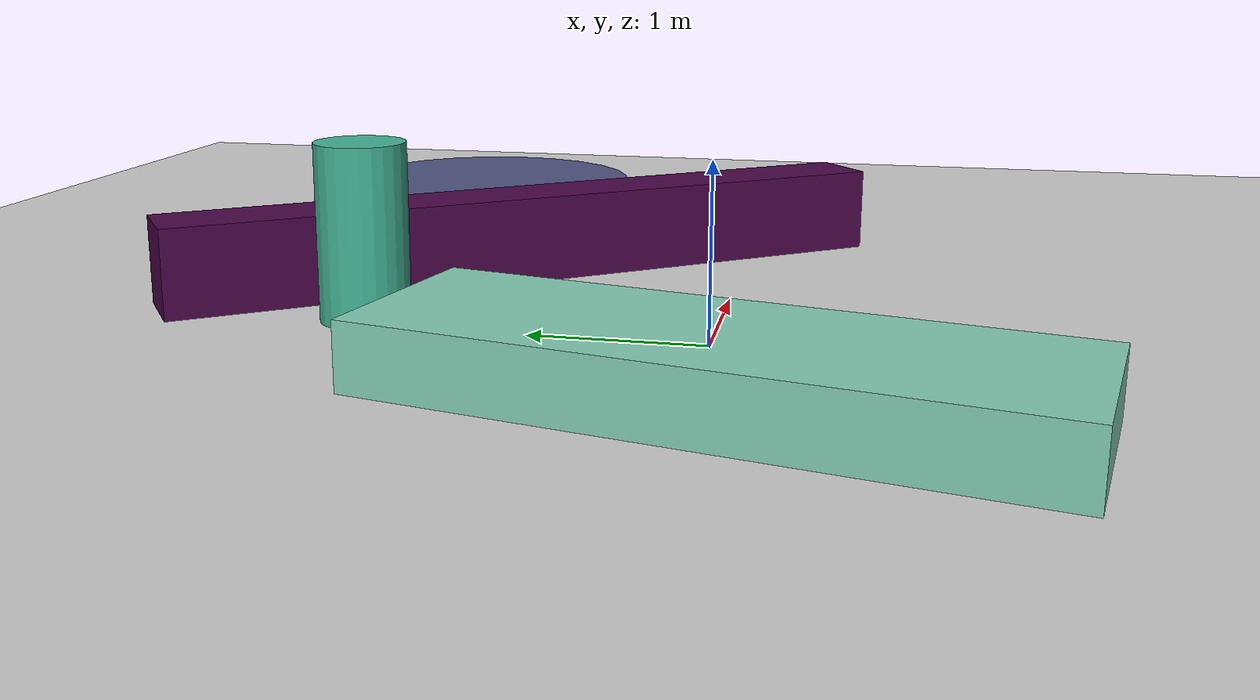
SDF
<sdf version="1.6">
 <world name="default">
  <atmosphere type="adiabatic"/>
  <wind><linear_velocity>0 0 0</linear_velocity></wind>
  <physics name="default_physics" default="1" type="ode">
   <max_step_size>0.001</max_step_size>
   <real_time_factor>1.0</real_time_factor>
   <real_time_update_rate>1000.0</real_time_update_rate>
   <max_contacts>20</max_contacts>
   <ode>
    <solver>
     <min_step_size>0.0001</min_step_size>
     <iters>50</iters>
     <sor>1.3</sor>
     <type>quick</type>
     <precon_iters>0</precon_iters>
     <use_dynamic_moi_rescaling>0</use_dynamic_moi_rescaling>
     <friction_model>pyramid_model</friction_model>
    </solver>
    <constraints>
     <cfm>0.0</cfm>
     <erp>0.2</erp>
     <contact_surface_layer>0.001</contact_surface_layer>
     <contact_max_correcting_vel>100.0</contact_max_correcting_vel>
    </constraints>
   </ode>
  </physics>
  <gravity>0 0 -9.8</gravity>
  <model name="static_cylinder">
   <pose>2.67272 1.95958 0.195457 0 0 -0.2218</pose>
   <static>1</static>
   <allow_auto_disable>0</allow_auto_disable>
   <link name="link">
    <collision name="collision">
     <geometry>
      <cylinder><radius>1.006847154357088</radius><length>0.3909134772756713</length></cylinder>
     </geometry>
     <max_contacts>20</max_contacts>
    </collision>
    <visual name="visual">
     <geometry>
      <cylinder><radius>1.006847154357088</radius><length>0.3909134772756713</length></cylinder>
     </geometry>
     <material>
      <ambient>0.305882 0.329412 0.505882 1</ambient>
      <diffuse>0.3058823529411765 0.32941176470588235 0.5058823529411764 1</diffuse>
     </material>
     <transparency>0.0</transparency>
    </visual>
   </link>
  </model>
  <model name="dyn_box">
   <pose>-0.944029 -0.152887 0.183178 0 0 -1.78197</pose>
   <static>0</static>
   <allow_auto_disable>0</allow_auto_disable>
   <link name="link">
    <collision name="collision">
     <geometry><box><size>3.42779 1.15622 0.366356</size></box></geometry>
     <max_contacts>20</max_contacts>
    </collision>
    <visual name="visual">
     <geometry><box><size>3.42779 1.15622 0.366356</size></box></geometry>
     <material>
      <ambient>0.509804 0.796078 0.698039 1</ambient>
      <diffuse>0.5098039215686274 0.796078431372549 0.6980392156862745 1</diffuse>
     </material>
     <transparency>0.0</transparency>
    </visual>
    <inertial>
     <inertia>
      <ixx>0.04445648803867359</ixx>
      <iyy>0.3591418281315364</iyy>
      <izz>0.3954860642825676</izz>
      <ixy>0.0</ixy>
      <ixz>0.0</ixz>
      <iyz>0.0</iyz>
     </inertia>
     <mass>0.36264824086674585</mass>
    </inertial>
   </link>
  </model>
  <model name="static_cylinder_1">
   <pose>0.130615 1.97757 0.507625 0 0 -0.695543</pose>
   <static>1</static>
   <allow_auto_disable>0</allow_auto_disable>
   <link name="link">
    <collision name="collision">
     <geometry>
      <cylinder><radius>0.2585235455360986</radius><length>1.0152490541523176</length></cylinder>
     </geometry>
     <max_contacts>20</max_contacts>
    </collision>
    <visual name="visual">
     <geometry>
      <cylinder><radius>0.2585235455360986</radius><length>1.0152490541523176</length></cylinder>
     </geometry>
     <material>
      <ambient>0.258824 0.701961 0.584314 1</ambient>
      <diffuse>0.25882352941176473 0.7019607843137254 0.5843137254901961 1</diffuse>
     </material>
     <transparency>0.0</transparency>
    </visual>
   </link>
  </model>
  <model name="dyn_box_1">
   <pose>1.42242 1.3042 0.267335 0 -0 0.644666</pose>
   <static>0</static>
   <allow_auto_disable>0</allow_auto_disable>
   <link name="link">
    <collision name="collision">
     <geometry><box><size>0.457227 4.74709 0.534669</size></box></geometry>
     <max_contacts>20</max_contacts>
    </collision>
    <visual name="visual">
     <geometry><box><size>0.457227 4.74709 0.534669</size></box></geometry>
     <material>
      <ambient>0.286275 0.0235294 0.282353 1</ambient>
      <diffuse>0.28627450980392155 0.023529411764705882 0.2823529411764706 1</diffuse>
     </material>
     <transparency>0.0</transparency>
    </visual>
    <inertial>
     <inertia>
      <ixx>1.02324077738095</ixx>
      <iyy>0.02219167684450363</iyy>
      <izz>1.0197965710645462</izz>
      <ixy>0.0</ixy>
      <ixz>0.0</ixz>
      <iyz>0.0</iyz>
     </inertia>
     <mass>0.5380584595849134</mass>
    </inertial>
   </link>
  </model>
  <include>
   <uri>model://ceiling_2</uri>
   <pose>0 0 3 0 -0 0</pose>
   <name>ceiling_2</name>
   <static>1</static>
  </include>
  <include><uri>model://ground_plane</uri><name>ground_plane</name><static>1</static></include>
  <include><uri>model://sun</uri></include>
 </world>
</sdf>

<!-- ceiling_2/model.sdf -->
<sdf version="1.6">
  <model name="ceiling_2">
    <pose frame="">0 0 6 0 -0 0</pose>
    <static>1</static>
    <self_collide>0</self_collide>
    <allow_auto_disable>0</allow_auto_disable>
    <link name="mesh">
      <kinematic>0</kinematic>
      <gravity>1</gravity>
      <self_collide>0</self_collide>
      <collision name="collision">
        <geometry>
          <mesh>
            <uri>model://ceiling_2/meshes/blxqPNCRUC.stl</uri>
            <scale>1 1 1</scale>
          </mesh>
        </geometry>
        <pose frame="">-6.23217 -9.14834 -0.075 0 -0 0</pose>
        <max_contacts>20</max_contacts>
      </collision>
      <visual name="visual">
        <geometry>
          <mesh>
            <uri>model://ceiling_2/meshes/uKiMVXZhvT.stl</uri>
            <scale>1 1 1</scale>
          </mesh>
        </geometry>
        <material>
          <ambient>0.796078 0.466667 0.137255 1</ambient>
          <diffuse>0.796078431372549 0.4666666666666667 0.13725490196078433 1</diffuse>
        </material>
        <pose frame="">-6.23217 -9.14834 -0.075 0 -0 0</pose>
        <cast_shadows>1</cast_shadows>
        <transparency>0.0</transparency>
      </visual>
      <pose frame="">0 0 0 0 -0 0</pose>
    </link>
  </model>
</sdf>
